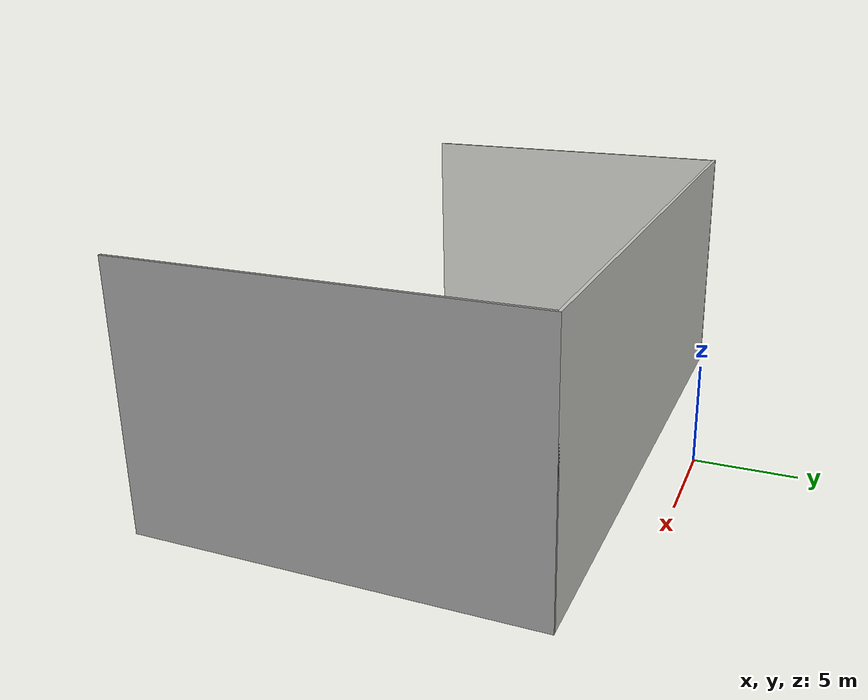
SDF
<?xml version='1.0'?>
<sdf version='1.6'>
  <model name='backwall'>
    <pose frame=''>0.655 -11.714 0 0 -0 0</pose>
    <link name='Wall_16'>
      <collision name='Wall_16_Collision'>
        <geometry>
          <box>
            <size>30 0.15 12.5</size>
          </box>
        </geometry>
        <pose frame=''>0 0 6.25 0 -0 0</pose>
      </collision>
      <visual name='Wall_16_Visual'>
        <pose frame=''>0 0 6.25 0 -0 0</pose>
        <geometry>
          <box>
            <size>30 0.15 12.5</size>
          </box>
        </geometry>
        <material>
          <script>
            <uri>file://media/materials/scripts/gazebo.material</uri>
            <name>Gazebo/CeilingTiled</name>
          </script>
          <ambient>1 1 1 1</ambient>
        </material>
        <meta>
          <layer>0</layer>
        </meta>
      </visual>
      <pose frame=''>0 9.425 0 0 -0 0</pose>
    </link>
    <link name='Wall_17'>
      <collision name='Wall_17_Collision'>
        <geometry>
          <box>
            <size>19 0.15 12.5</size>
          </box>
        </geometry>
        <pose frame=''>0 0 6.25 0 -0 0</pose>
      </collision>
      <visual name='Wall_17_Visual'>
        <pose frame=''>0 0 6.25 0 -0 0</pose>
        <geometry>
          <box>
            <size>19 0.15 12.5</size>
          </box>
        </geometry>
        <material>
          <script>
            <uri>file://media/materials/scripts/gazebo.material</uri>
            <name>Gazebo/Grey</name>
          </script>
          <ambient>1 1 1 1</ambient>
        </material>
        <meta>
          <layer>0</layer>
        </meta>
      </visual>
      <pose frame=''>14.925 0 0 0 0 -1.5708</pose>
    </link>
    <link name='Wall_20'>
      <collision name='Wall_20_Collision'>
        <geometry>
          <box>
            <size>17.75 0.15 12.5</size>
          </box>
        </geometry>
        <pose frame=''>0 0 6.25 0 -0 0</pose>
      </collision>
      <visual name='Wall_20_Visual'>
        <pose frame=''>0 0 6.25 0 -0 0</pose>
        <geometry>
          <box>
            <size>17.75 0.15 12.5</size>
          </box>
        </geometry>
        <material>
          <script>
            <uri>file://media/materials/scripts/gazebo.material</uri>
            <name>Gazebo/CeilingTiled</name>
          </script>
          <ambient>1 1 1 1</ambient>
        </material>
        <meta>
          <layer>0</layer>
        </meta>
      </visual>
      <pose frame=''>-14.925 0.625 0 0 0 -1.5708</pose>
    </link>
    <static>1</static>
  </model>
</sdf>
